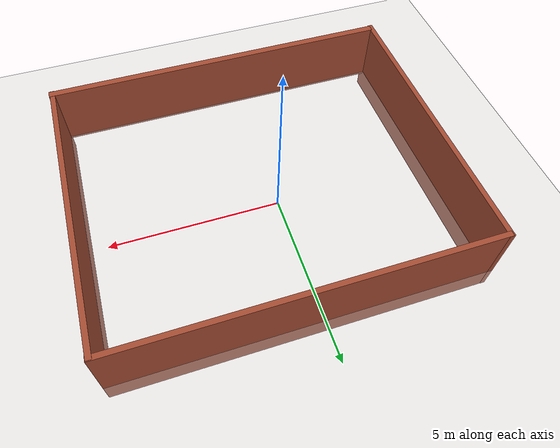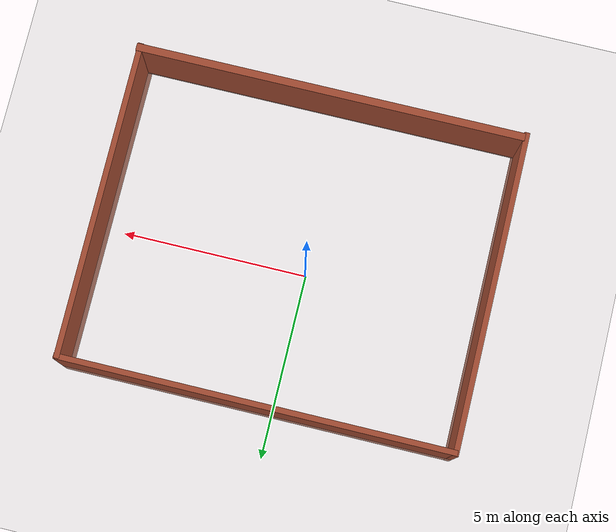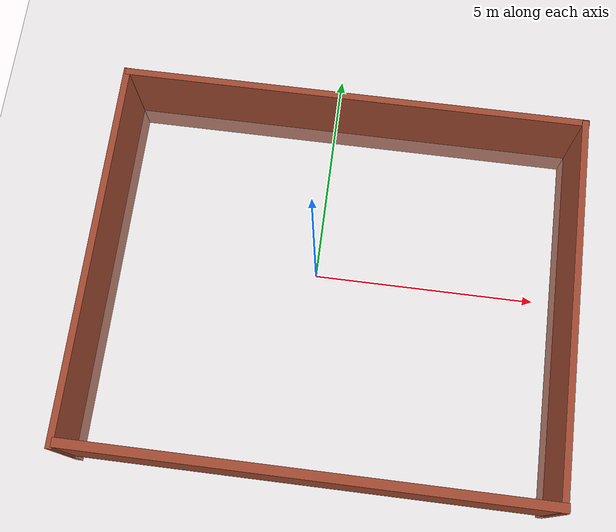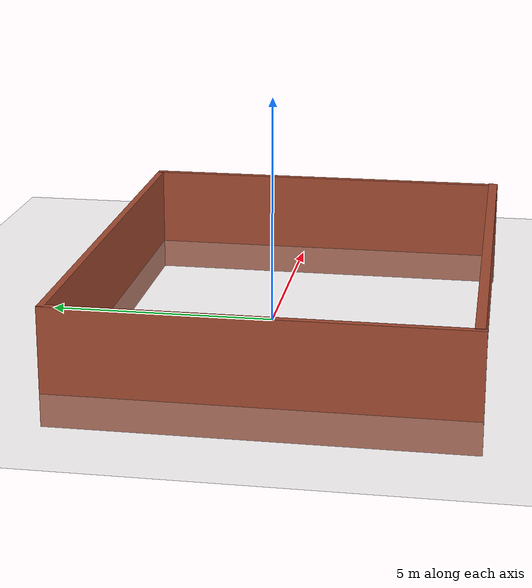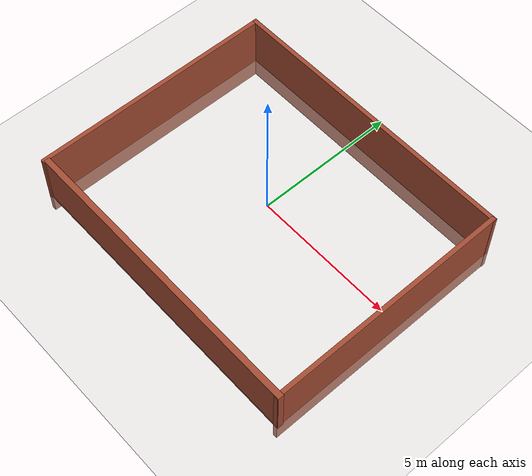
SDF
<sdf version="1.6">
 <world name="default">
  <light name="sun" type="directional">
   <pose>0 0 10 0 -0 0</pose>
   <diffuse>0.8 0.8 0.8 1</diffuse>
   <specular>0.1 0.1 0.1 1</specular>
   <attenuation>
    <range>1000</range>
    <constant>0.9</constant>
    <linear>0.01</linear>
    <quadratic>0.001</quadratic>
   </attenuation>
   <direction>-0.5 0.5 -1</direction>
  </light>
  <model name="ground_plane">
   <static>1</static>
   <link name="link">
    <collision name="collision">
     <geometry><plane><normal>0 0 1</normal><size>100 100</size></plane></geometry>
     <surface><friction><ode><mu>100</mu><mu2>50</mu2></ode></friction></surface>
    </collision>
    <visual name="visual">
     <cast_shadows>0</cast_shadows>
     <geometry><plane><normal>0 0 1</normal><size>100 100</size></plane></geometry>
     <material>
      <script><uri>file://media/materials/scripts/gazebo.material</uri><name>Gazebo/Grey</name></script>
     </material>
    </visual>
   </link>
  </model>
  <gravity>0 0 -9.8</gravity>
  <magnetic_field>6e-06 2.3e-05 -4.2e-05</magnetic_field>
  <atmosphere type="adiabatic"/>
  <physics name="default_physics" default="0" type="ode">
   <max_step_size>0.001</max_step_size>
   <real_time_factor>1</real_time_factor>
   <real_time_update_rate>1000</real_time_update_rate>
  </physics>
  <scene><ambient>0.4 0.4 0.4 1</ambient><background>0.7 0.7 0.7 1</background><shadows>1</shadows></scene>
  <spherical_coordinates>
   <surface_model>EARTH_WGS84</surface_model>
   <latitude_deg>0</latitude_deg>
   <longitude_deg>0</longitude_deg>
   <elevation>0</elevation>
   <heading_deg>0</heading_deg>
  </spherical_coordinates>
  <model name="perimeter">
   <link name="Wall_1">
    <pose>-5.05551 0.980298 -0.705726 0 -0 1.5708</pose>
    <inertial>
     <inertia><ixx>0</ixx><ixy>0</ixy><ixz>0</ixz><iyy>0</iyy><iyz>0</iyz><izz>0</izz></inertia>
     <mass>0</mass>
    </inertial>
    <visual name="Wall_1_Visual">
     <pose>0 0 1.25 0 -0 0</pose>
     <geometry><box><size>8.62304 0.15 2.5</size></box></geometry>
     <material>
      <script><uri>file://media/materials/scripts/gazebo.material</uri><name>Gazebo/Bricks</name></script>
      <ambient>1 1 1 1</ambient>
      <diffuse>1 1 1 1</diffuse>
      <specular>0.2 0.2 0.2 1</specular>
      <emissive>0 0 0 1</emissive>
     </material>
    </visual>
    <collision name="Wall_1_Collision">
     <pose>0 0 1.25 0 -0 0</pose>
     <geometry><box><size>8.62304 0.15 2.5</size></box></geometry>
     <surface>
      <friction>
       <ode><mu>1</mu><mu2>1</mu2><fdir1>0 0 0</fdir1><slip1>0</slip1><slip2>0</slip2></ode>
       <torsional>
        <coefficient>1</coefficient>
        <patch_radius>0</patch_radius>
        <surface_radius>0</surface_radius>
        <use_patch_radius>1</use_patch_radius>
        <ode><slip>0</slip></ode>
       </torsional>
      </friction>
      <bounce><restitution_coefficient>0</restitution_coefficient><threshold>1e+06</threshold></bounce>
      <contact>
       <collide_without_contact>0</collide_without_contact>
       <collide_without_contact_bitmask>1</collide_without_contact_bitmask>
       <collide_bitmask>1</collide_bitmask>
       <ode>
        <soft_cfm>0</soft_cfm>
        <soft_erp>0.2</soft_erp>
        <kp>1e+13</kp>
        <kd>1</kd>
        <max_vel>0.01</max_vel>
        <min_depth>0</min_depth>
       </ode>
       <bullet>
        <split_impulse>1</split_impulse>
        <split_impulse_penetration_threshold>-0.01</split_impulse_penetration_threshold>
        <soft_cfm>0</soft_cfm>
        <soft_erp>0.2</soft_erp>
        <kp>1e+13</kp>
        <kd>1</kd>
       </bullet>
      </contact>
     </surface>
    </collision>
   </link>
   <link name="Wall_2">
    <pose>0.170161 5.21282 -0.704279 0 -0 0</pose>
    <inertial>
     <inertia><ixx>0</ixx><ixy>0</ixy><ixz>0</ixz><iyy>0</iyy><iyz>0</iyz><izz>0</izz></inertia>
     <mass>0</mass>
    </inertial>
    <visual name="Wall_2_Visual">
     <pose>0 0 1.25 0 -0 0</pose>
     <geometry><box><size>10.5308 0.15 2.5</size></box></geometry>
     <material>
      <script><uri>file://media/materials/scripts/gazebo.material</uri><name>Gazebo/Bricks</name></script>
      <ambient>1 1 1 1</ambient>
      <diffuse>1 1 1 1</diffuse>
      <specular>0.2 0.2 0.2 1</specular>
      <emissive>0 0 0 1</emissive>
     </material>
    </visual>
    <collision name="Wall_2_Collision">
     <pose>0 0 1.25 0 -0 0</pose>
     <geometry><box><size>10.5308 0.15 2.5</size></box></geometry>
     <surface>
      <friction>
       <ode><mu>1</mu><mu2>1</mu2><fdir1>0 0 0</fdir1><slip1>0</slip1><slip2>0</slip2></ode>
       <torsional>
        <coefficient>1</coefficient>
        <patch_radius>0</patch_radius>
        <surface_radius>0</surface_radius>
        <use_patch_radius>1</use_patch_radius>
        <ode><slip>0</slip></ode>
       </torsional>
      </friction>
      <bounce><restitution_coefficient>0</restitution_coefficient><threshold>1e+06</threshold></bounce>
      <contact>
       <collide_without_contact>0</collide_without_contact>
       <collide_without_contact_bitmask>1</collide_without_contact_bitmask>
       <collide_bitmask>1</collide_bitmask>
       <ode>
        <soft_cfm>0</soft_cfm>
        <soft_erp>0.2</soft_erp>
        <kp>1e+13</kp>
        <kd>1</kd>
        <max_vel>0.01</max_vel>
        <min_depth>0</min_depth>
       </ode>
       <bullet>
        <split_impulse>1</split_impulse>
        <split_impulse_penetration_threshold>-0.01</split_impulse_penetration_threshold>
        <soft_cfm>0</soft_cfm>
        <soft_erp>0.2</soft_erp>
        <kp>1e+13</kp>
        <kd>1</kd>
       </bullet>
      </contact>
     </surface>
    </collision>
   </link>
   <link name="Wall_3">
    <pose>5.35114 0.981025 -0.696468 0 0 -1.5708</pose>
    <inertial>
     <inertia><ixx>0</ixx><ixy>0</ixy><ixz>0</ixz><iyy>0</iyy><iyz>0</iyz><izz>0</izz></inertia>
     <mass>0</mass>
    </inertial>
    <visual name="Wall_3_Visual">
     <pose>0 0 1.25 0 -0 0</pose>
     <geometry><box><size>8.57675 0.15 2.5</size></box></geometry>
     <material>
      <script><uri>file://media/materials/scripts/gazebo.material</uri><name>Gazebo/Bricks</name></script>
      <ambient>1 1 1 1</ambient>
      <diffuse>1 1 1 1</diffuse>
      <specular>0.2 0.2 0.2 1</specular>
      <emissive>0 0 0 1</emissive>
     </material>
    </visual>
    <collision name="Wall_3_Collision">
     <pose>0 0 1.25 0 -0 0</pose>
     <geometry><box><size>8.57675 0.15 2.5</size></box></geometry>
     <surface>
      <friction>
       <ode><mu>1</mu><mu2>1</mu2><fdir1>0 0 0</fdir1><slip1>0</slip1><slip2>0</slip2></ode>
       <torsional>
        <coefficient>1</coefficient>
        <patch_radius>0</patch_radius>
        <surface_radius>0</surface_radius>
        <use_patch_radius>1</use_patch_radius>
        <ode><slip>0</slip></ode>
       </torsional>
      </friction>
      <bounce><restitution_coefficient>0</restitution_coefficient><threshold>1e+06</threshold></bounce>
      <contact>
       <collide_without_contact>0</collide_without_contact>
       <collide_without_contact_bitmask>1</collide_without_contact_bitmask>
       <collide_bitmask>1</collide_bitmask>
       <ode>
        <soft_cfm>0</soft_cfm>
        <soft_erp>0.2</soft_erp>
        <kp>1e+13</kp>
        <kd>1</kd>
        <max_vel>0.01</max_vel>
        <min_depth>0</min_depth>
       </ode>
       <bullet>
        <split_impulse>1</split_impulse>
        <split_impulse_penetration_threshold>-0.01</split_impulse_penetration_threshold>
        <soft_cfm>0</soft_cfm>
        <soft_erp>0.2</soft_erp>
        <kp>1e+13</kp>
        <kd>1</kd>
       </bullet>
      </contact>
     </surface>
    </collision>
   </link>
   <link name="Wall_4">
    <pose>0.211522 -3.19061 -0.386679 0 -0 3.14159</pose>
    <inertial>
     <inertia><ixx>0</ixx><ixy>0</ixy><ixz>0</ixz><iyy>0</iyy><iyz>0</iyz><izz>0</izz></inertia>
     <mass>0</mass>
    </inertial>
    <visual name="Wall_4_Visual">
     <pose>0 0 1.25 0 -0 0</pose>
     <geometry><box><size>10.4714 0.205832 1.88868</size></box></geometry>
     <material>
      <script><uri>file://media/materials/scripts/gazebo.material</uri><name>Gazebo/Bricks</name></script>
      <ambient>1 1 1 1</ambient>
      <diffuse>1 1 1 1</diffuse>
      <specular>0.2 0.2 0.2 1</specular>
      <emissive>0 0 0 1</emissive>
     </material>
    </visual>
    <collision name="Wall_4_Collision">
     <pose>0 0 1.25 0 -0 0</pose>
     <geometry><box><size>10.4714 0.205832 1.88868</size></box></geometry>
     <surface>
      <friction>
       <ode><mu>1</mu><mu2>1</mu2><fdir1>0 0 0</fdir1><slip1>0</slip1><slip2>0</slip2></ode>
       <torsional>
        <coefficient>1</coefficient>
        <patch_radius>0</patch_radius>
        <surface_radius>0</surface_radius>
        <use_patch_radius>1</use_patch_radius>
        <ode><slip>0</slip></ode>
       </torsional>
      </friction>
      <bounce><restitution_coefficient>0</restitution_coefficient><threshold>1e+06</threshold></bounce>
      <contact>
       <collide_without_contact>0</collide_without_contact>
       <collide_without_contact_bitmask>1</collide_without_contact_bitmask>
       <collide_bitmask>1</collide_bitmask>
       <ode>
        <soft_cfm>0</soft_cfm>
        <soft_erp>0.2</soft_erp>
        <kp>1e+13</kp>
        <kd>1</kd>
        <max_vel>0.01</max_vel>
        <min_depth>0</min_depth>
       </ode>
       <bullet>
        <split_impulse>1</split_impulse>
        <split_impulse_penetration_threshold>-0.01</split_impulse_penetration_threshold>
        <soft_cfm>0</soft_cfm>
        <soft_erp>0.2</soft_erp>
        <kp>1e+13</kp>
        <kd>1</kd>
       </bullet>
      </contact>
     </surface>
    </collision>
   </link>
   <static>1</static>
   <pose>0.25699 -1.44414 0 0 -0 0</pose>
  </model>
 </world>
</sdf>
